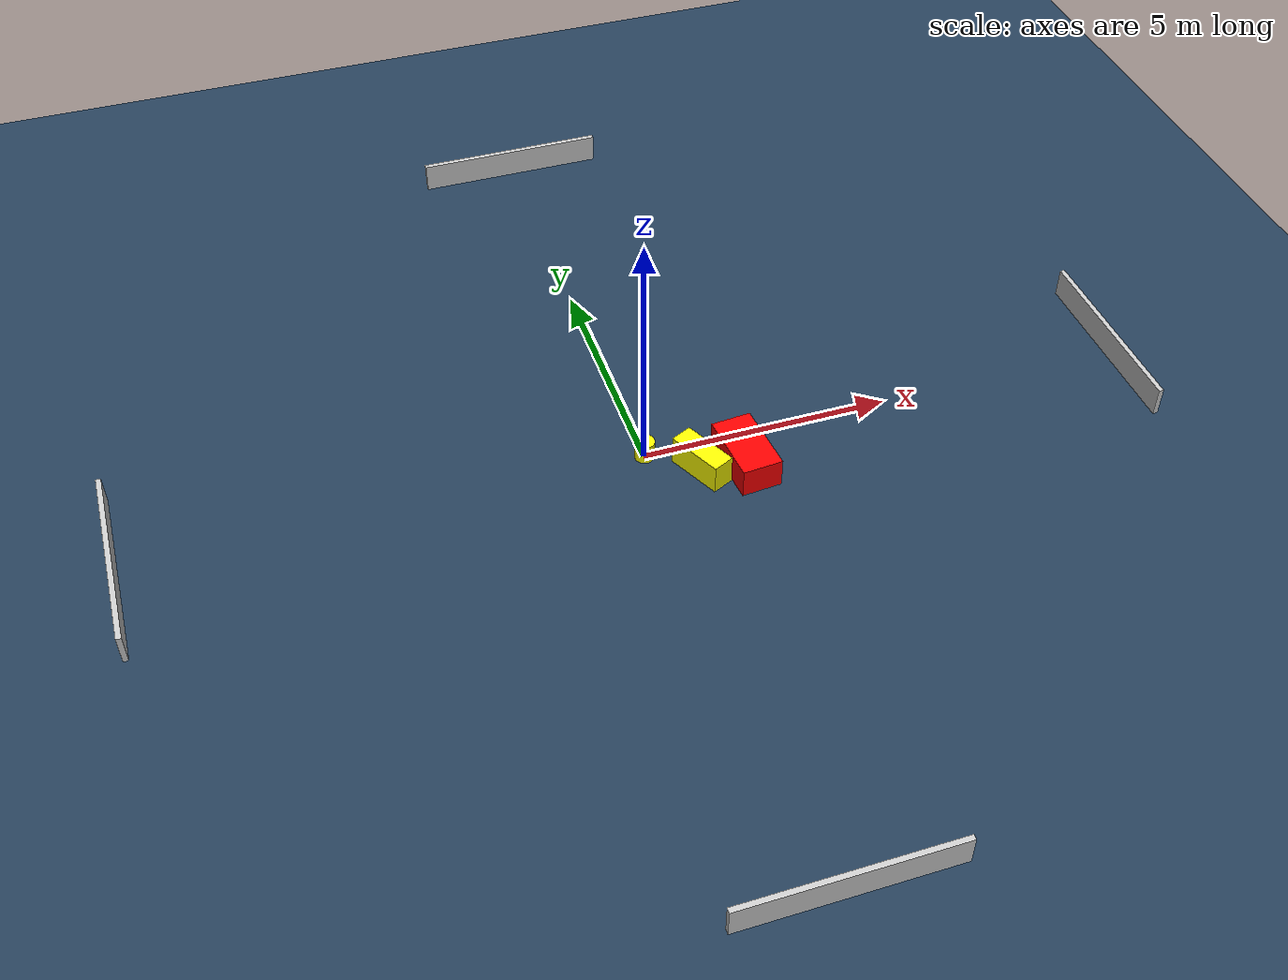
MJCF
<?xml version="1.0" ?>
<mujoco model="generated_environment">
  <option timestep="0.01" integrator="RK4" cone="elliptic"/>
  <default>
    <geom density="1"/>
  </default>
  <asset>
    <texture builtin="gradient" height="3072" name="skybox" rgb1="0.3 0.5 0.7" rgb2="0 0 0" type="skybox" width="512"/>
    <texture builtin="checker" height="300" name="groundplane" rgb1="0.2 0.3 0.4" rgb2="0.1 0.2 0.3" type="2d" width="300"/>
    <material name="groundplane" reflectance="0.2" texrepeat="5 5" texture="groundplane"/>
  </asset>
  <worldbody>
    <light dir="0 0 -1" directional="true" pos="0 0 1.5"/>
    <geom condim="3" friction="0.5 0.005 0.001" material="groundplane" name="floor" pos="0 0 0" size="0 0 0.05" type="plane"/>
    <body name="walls">
      <geom name="wall_1" condim="4" pos="-10.0 0.0 0.3" rgba="0.800000011920929 0.800000011920929 0.800000011920929 1.0" size="0.05 2.0 0.3" type="box"/>
      <geom name="wall_2" condim="4" pos="10.0 0.0 0.3" rgba="0.800000011920929 0.800000011920929 0.800000011920929 1.0" size="0.05 2.0 0.3" type="box"/>
      <geom name="wall_3" condim="4" pos="0.0 -10.0 0.3" rgba="0.800000011920929 0.800000011920929 0.800000011920929 1.0" size="2.0 0.05 0.3" type="box"/>
      <geom name="wall_4" condim="4" pos="0.0 10.0 0.3" rgba="0.800000011920929 0.800000011920929 0.800000011920929 1.0" size="2.0 0.05 0.3" type="box"/>
    </body>
    <body name="robot">
      <joint name="joint_x" type="slide" pos="0 0 0" axis="1 0 0"/>
      <joint name="joint_y" type="slide" pos="0 0 0" axis="0 1 0"/>
      <geom name="robot" type="cylinder" pos="0.0 0.0 0.2" size="0.2 0.2 0.0" mass="5.0" friction="1.0 0.005 0.0001" condim="4" rgba="1.0 1.0 0.0 1.0"/>
    </body>
    <body name="obstacle_1_movable">
      <geom name="obstacle_1_movable" condim="4" pos="0.9134735986940828 -0.7172541344640337 0.3" euler="0 0 115.52832893470928" friction="0.0 0.005 0.001" rgba="1.0 1.0 0.0 1.0" size="0.5760720591253696 0.22439678756666084 0.3" type="box" mass="0.1"/>
      <joint type="free"/>
    </body>
    <body name="obstacle_2_static">
      <geom name="obstacle_2_static" condim="4" pos="1.7651219182430742 -0.8357974977917959 0.3" euler="0 0 4.783675151138835" friction="0.0 0.005 0.001" rgba="1.0 0.0 0.0 1.0" size="0.40405233750489933 0.7226534807081875 0.3" type="box"/>
    </body>
  </worldbody>
  <actuator>
    <motor name="actuator_x" joint="joint_x" gear="1" ctrlrange="-1 1"/>
    <motor name="actuator_y" joint="joint_y" gear="1" ctrlrange="-1 1"/>
  </actuator>
</mujoco>
